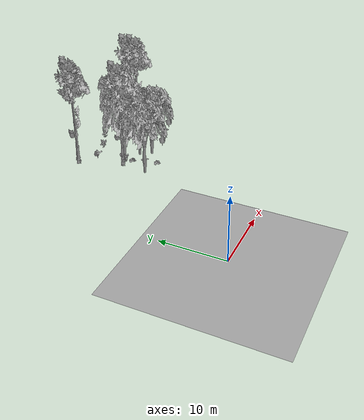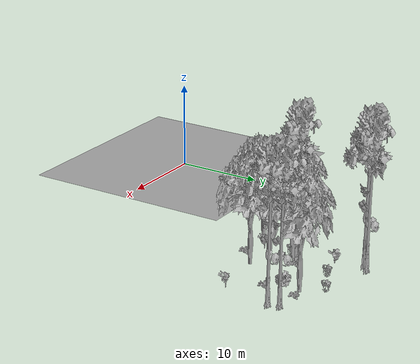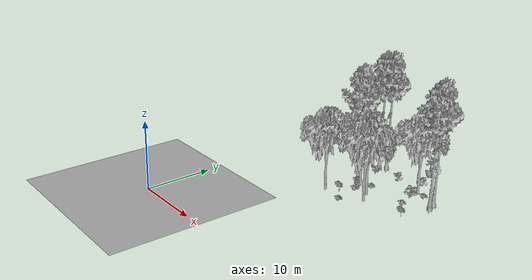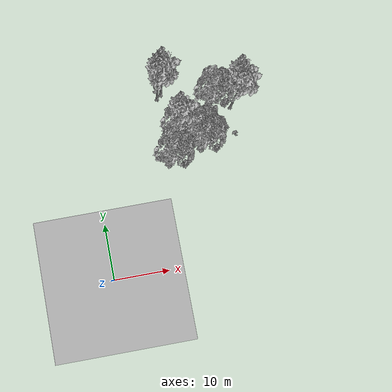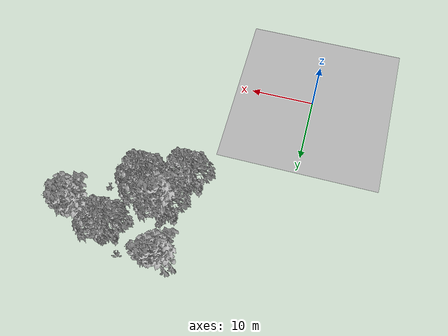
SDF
<sdf version="1.7">
 <world name="default">
  <model name="ground_plane">
   <static>1</static>
   <link name="link">
    <collision name="collision">
     <pose>-50 0 0 0 -0 0</pose>
     <geometry><plane><normal>0 0 1</normal><size>80 80</size></plane></geometry>
     <surface><contact><ode><min_depth>0.01</min_depth><max_vel>0</max_vel></ode></contact></surface>
    </collision>
    <visual name="grass">
     <cast_shadows>0</cast_shadows>
     <geometry>
      <mesh>
       <scale>0.46714285714285714 0.46714285714285714 0.1</scale>
       <uri>file://grass_plane/meshes/grass_plane.dae</uri>
      </mesh>
     </geometry>
    </visual>
   </link>
  </model>
  <model name="Tree 10">
   <static>1</static>
   <pose>26.239078518444046 28.596939956956504 0 1.57079 -0 0</pose>
   <link name="link">
    <collision name="collision">
     <geometry><mesh><scale>3.5 5 3.5</scale><uri>model://tree_9/meshes/tree_9.obj</uri></mesh></geometry>
    </collision>
    <visual name="visual">
     <geometry><mesh><scale>3.5 5 3.5</scale><uri>model://tree_9/meshes/tree_9.obj</uri></mesh></geometry>
    </visual>
   </link>
  </model>
  <model name="Tree 40">
   <static>1</static>
   <pose>13.532458818767253 31.368420178281497 0 1.57079 -0 0</pose>
   <link name="link">
    <collision name="collision">
     <geometry><mesh><scale>3.5 5 3.5</scale><uri>model://tree_9/meshes/tree_9.obj</uri></mesh></geometry>
    </collision>
    <visual name="visual">
     <geometry><mesh><scale>3.5 5 3.5</scale><uri>model://tree_9/meshes/tree_9.obj</uri></mesh></geometry>
    </visual>
   </link>
  </model>
  <model name="Tree 87">
   <static>1</static>
   <pose>14.392105681163414 19.774436516329956 0 1.57079 -0 0</pose>
   <link name="link">
    <collision name="collision">
     <geometry><mesh><scale>3.5 5 3.5</scale><uri>model://tree_2/meshes/tree_2.obj</uri></mesh></geometry>
    </collision>
    <visual name="visual">
     <geometry><mesh><scale>3.5 5 3.5</scale><uri>model://tree_2/meshes/tree_2.obj</uri></mesh></geometry>
    </visual>
   </link>
  </model>
  <model name="Tree 108">
   <static>1</static>
   <pose>22.956836607140602 28.98580827372855 0 1.57079 -0 0</pose>
   <link name="link">
    <collision name="collision">
     <geometry><mesh><scale>3.5 5 3.5</scale><uri>model://tree_2/meshes/tree_2.obj</uri></mesh></geometry>
    </collision>
    <visual name="visual">
     <geometry><mesh><scale>3.5 5 3.5</scale><uri>model://tree_2/meshes/tree_2.obj</uri></mesh></geometry>
    </visual>
   </link>
  </model>
  <model name="Tree 118">
   <static>1</static>
   <pose>16.41771445764458 24.500252177107924 0 1.57079 -0 0</pose>
   <link name="link">
    <collision name="collision">
     <geometry><mesh><scale>3.5 5 3.5</scale><uri>model://tree_2/meshes/tree_2.obj</uri></mesh></geometry>
    </collision>
    <visual name="visual">
     <geometry><mesh><scale>3.5 5 3.5</scale><uri>model://tree_2/meshes/tree_2.obj</uri></mesh></geometry>
    </visual>
   </link>
  </model>
  <model name="Tree 222">
   <static>1</static>
   <pose>18.9627846887066 23.138618906335324 0 1.57079 -0 0</pose>
   <link name="link">
    <collision name="collision">
     <geometry><mesh><scale>3.5 5 3.5</scale><uri>model://tree_2/meshes/tree_2.obj</uri></mesh></geometry>
    </collision>
    <visual name="visual">
     <geometry><mesh><scale>3.5 5 3.5</scale><uri>model://tree_2/meshes/tree_2.obj</uri></mesh></geometry>
    </visual>
   </link>
  </model>
  <model name="Tree 268">
   <static>1</static>
   <pose>20.074326106711823 21.508188619373072 0 1.57079 -0 0</pose>
   <link name="link">
    <collision name="collision">
     <geometry><mesh><scale>3.5 5 3.5</scale><uri>model://tree_2/meshes/tree_2.obj</uri></mesh></geometry>
    </collision>
    <visual name="visual">
     <geometry><mesh><scale>3.5 5 3.5</scale><uri>model://tree_2/meshes/tree_2.obj</uri></mesh></geometry>
    </visual>
   </link>
  </model>
  <model name="Tree 403">
   <static>1</static>
   <pose>14.32059340353073 32.043064214741506 0 1.57079 -0 0</pose>
   <link name="link">
    <collision name="collision">
     <geometry><mesh><scale>3.5 5 3.5</scale><uri>model://tree_9/meshes/tree_9.obj</uri></mesh></geometry>
    </collision>
    <visual name="visual">
     <geometry><mesh><scale>3.5 5 3.5</scale><uri>model://tree_9/meshes/tree_9.obj</uri></mesh></geometry>
    </visual>
   </link>
  </model>
  <model name="Tree 431">
   <static>1</static>
   <pose>26.561759753015707 27.428472126124348 0 1.57079 -0 0</pose>
   <link name="link">
    <collision name="collision">
     <geometry><mesh><scale>3.5 5 3.5</scale><uri>model://tree_9/meshes/tree_9.obj</uri></mesh></geometry>
    </collision>
    <visual name="visual">
     <geometry><mesh><scale>3.5 5 3.5</scale><uri>model://tree_9/meshes/tree_9.obj</uri></mesh></geometry>
    </visual>
   </link>
  </model>
  <model name="Tree 549">
   <static>1</static>
   <pose>15.877826808889516 24.547905403713372 0 1.57079 -0 0</pose>
   <link name="link">
    <collision name="collision">
     <geometry><mesh><scale>3.5 5 3.5</scale><uri>model://tree_9/meshes/tree_9.obj</uri></mesh></geometry>
    </collision>
    <visual name="visual">
     <geometry><mesh><scale>3.5 5 3.5</scale><uri>model://tree_9/meshes/tree_9.obj</uri></mesh></geometry>
    </visual>
   </link>
  </model>
  <model name="Bush 34">
   <static>1</static>
   <pose>17.60492139472587 19.29252684359585 0 1.57079 -0 0</pose>
   <link name="link">
    <collision name="collision">
     <geometry><mesh><scale>2 2 2</scale><uri>model://bush_2/meshes/bush_2.obj</uri></mesh></geometry>
     <surface><contact><collide_without_contact>false</collide_without_contact></contact></surface>
    </collision>
    <visual name="visual">
     <geometry><mesh><scale>2 2 2</scale><uri>model://bush_2/meshes/bush_2.obj</uri></mesh></geometry>
    </visual>
   </link>
  </model>
  <model name="Bush 58">
   <static>1</static>
   <pose>16.665136919414273 23.22674926575756 0 1.57079 -0 0</pose>
   <link name="link">
    <collision name="collision">
     <geometry><mesh><scale>2 2 2</scale><uri>model://bush_2/meshes/bush_2.obj</uri></mesh></geometry>
     <surface><contact><collide_without_contact>false</collide_without_contact></contact></surface>
    </collision>
    <visual name="visual">
     <geometry><mesh><scale>2 2 2</scale><uri>model://bush_2/meshes/bush_2.obj</uri></mesh></geometry>
    </visual>
   </link>
  </model>
  <model name="Bush 76">
   <static>1</static>
   <pose>23.661632628063963 25.207877798918346 0 1.57079 -0 0</pose>
   <link name="link">
    <collision name="collision">
     <geometry><mesh><scale>2 2 2</scale><uri>model://bush_2/meshes/bush_2.obj</uri></mesh></geometry>
     <surface><contact><collide_without_contact>false</collide_without_contact></contact></surface>
    </collision>
    <visual name="visual">
     <geometry><mesh><scale>2 2 2</scale><uri>model://bush_2/meshes/bush_2.obj</uri></mesh></geometry>
    </visual>
   </link>
  </model>
  <model name="Bush 125">
   <static>1</static>
   <pose>18.57653887312736 29.69112255030045 0 1.57079 -0 0</pose>
   <link name="link">
    <collision name="collision">
     <geometry><mesh><scale>2 2 2</scale><uri>model://bush_4/meshes/bush_4.obj</uri></mesh></geometry>
     <surface><contact><collide_without_contact>false</collide_without_contact></contact></surface>
    </collision>
    <visual name="visual">
     <geometry><mesh><scale>2 2 2</scale><uri>model://bush_4/meshes/bush_4.obj</uri></mesh></geometry>
    </visual>
   </link>
  </model>
  <model name="Bush 166">
   <static>1</static>
   <pose>21.739014542612885 31.255800363033444 0 1.57079 -0 0</pose>
   <link name="link">
    <collision name="collision">
     <geometry><mesh><scale>2 2 2</scale><uri>model://bush_4/meshes/bush_4.obj</uri></mesh></geometry>
     <surface><contact><collide_without_contact>false</collide_without_contact></contact></surface>
    </collision>
    <visual name="visual">
     <geometry><mesh><scale>2 2 2</scale><uri>model://bush_4/meshes/bush_4.obj</uri></mesh></geometry>
    </visual>
   </link>
  </model>
  <model name="Bush 195">
   <static>1</static>
   <pose>24.06410168968973 28.984890373342196 0 1.57079 -0 0</pose>
   <link name="link">
    <collision name="collision">
     <geometry><mesh><scale>2 2 2</scale><uri>model://bush_2/meshes/bush_2.obj</uri></mesh></geometry>
     <surface><contact><collide_without_contact>false</collide_without_contact></contact></surface>
    </collision>
    <visual name="visual">
     <geometry><mesh><scale>2 2 2</scale><uri>model://bush_2/meshes/bush_2.obj</uri></mesh></geometry>
    </visual>
   </link>
  </model>
  <model name="Bush 249">
   <static>1</static>
   <pose>17.601132782069726 25.539712570521175 0 1.57079 -0 0</pose>
   <link name="link">
    <collision name="collision">
     <geometry><mesh><scale>2 2 2</scale><uri>model://bush_2/meshes/bush_2.obj</uri></mesh></geometry>
     <surface><contact><collide_without_contact>false</collide_without_contact></contact></surface>
    </collision>
    <visual name="visual">
     <geometry><mesh><scale>2 2 2</scale><uri>model://bush_2/meshes/bush_2.obj</uri></mesh></geometry>
    </visual>
   </link>
  </model>
  <model name="Bush 383">
   <static>1</static>
   <pose>16.112651915393712 24.128008054888397 0 1.57079 -0 0</pose>
   <link name="link">
    <collision name="collision">
     <geometry><mesh><scale>2 2 2</scale><uri>model://bush_4/meshes/bush_4.obj</uri></mesh></geometry>
     <surface><contact><collide_without_contact>false</collide_without_contact></contact></surface>
    </collision>
    <visual name="visual">
     <geometry><mesh><scale>2 2 2</scale><uri>model://bush_4/meshes/bush_4.obj</uri></mesh></geometry>
    </visual>
   </link>
  </model>
  <model name="Bush 466">
   <static>1</static>
   <pose>16.13850097917507 20.892102274047005 0 1.57079 -0 0</pose>
   <link name="link">
    <collision name="collision">
     <geometry><mesh><scale>2 2 2</scale><uri>model://bush_5/meshes/bush_5.obj</uri></mesh></geometry>
     <surface><contact><collide_without_contact>false</collide_without_contact></contact></surface>
    </collision>
    <visual name="visual">
     <geometry><mesh><scale>2 2 2</scale><uri>model://bush_5/meshes/bush_5.obj</uri></mesh></geometry>
    </visual>
   </link>
  </model>
  <model name="Bush 473">
   <static>1</static>
   <pose>23.262087891612232 27.104315375299294 0 1.57079 -0 0</pose>
   <link name="link">
    <collision name="collision">
     <geometry><mesh><scale>2 2 2</scale><uri>model://bush_1/meshes/bush_1.obj</uri></mesh></geometry>
     <surface><contact><collide_without_contact>false</collide_without_contact></contact></surface>
    </collision>
    <visual name="visual">
     <geometry><mesh><scale>2 2 2</scale><uri>model://bush_1/meshes/bush_1.obj</uri></mesh></geometry>
    </visual>
   </link>
  </model>
  <model name="Bush 500">
   <static>1</static>
   <pose>15.199030579396634 28.818166264691627 0 1.57079 -0 0</pose>
   <link name="link">
    <collision name="collision">
     <geometry><mesh><scale>2 2 2</scale><uri>model://bush_0/meshes/bush_0.obj</uri></mesh></geometry>
     <surface><contact><collide_without_contact>false</collide_without_contact></contact></surface>
    </collision>
    <visual name="visual">
     <geometry><mesh><scale>2 2 2</scale><uri>model://bush_0/meshes/bush_0.obj</uri></mesh></geometry>
    </visual>
   </link>
  </model>
  <model name="Bush 506">
   <static>1</static>
   <pose>26.21784775078858 22.332270802735806 0 1.57079 -0 0</pose>
   <link name="link">
    <collision name="collision">
     <geometry><mesh><scale>2 2 2</scale><uri>model://bush_5/meshes/bush_5.obj</uri></mesh></geometry>
     <surface><contact><collide_without_contact>false</collide_without_contact></contact></surface>
    </collision>
    <visual name="visual">
     <geometry><mesh><scale>2 2 2</scale><uri>model://bush_5/meshes/bush_5.obj</uri></mesh></geometry>
    </visual>
   </link>
  </model>
 </world>
</sdf>
